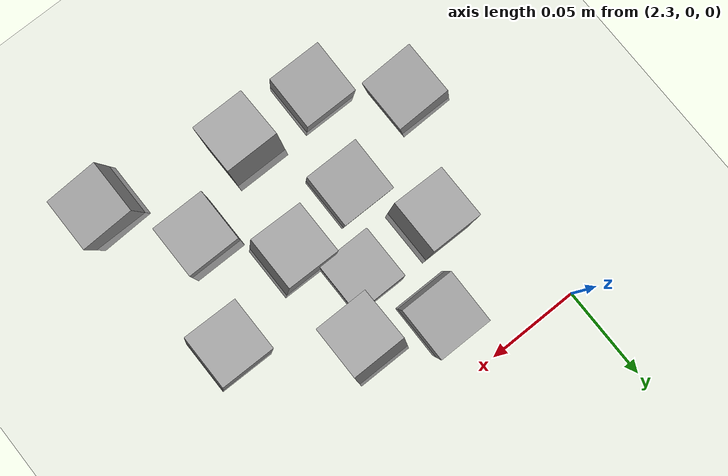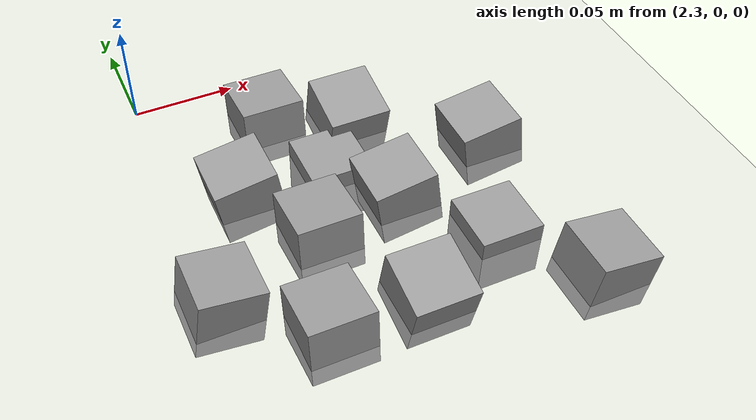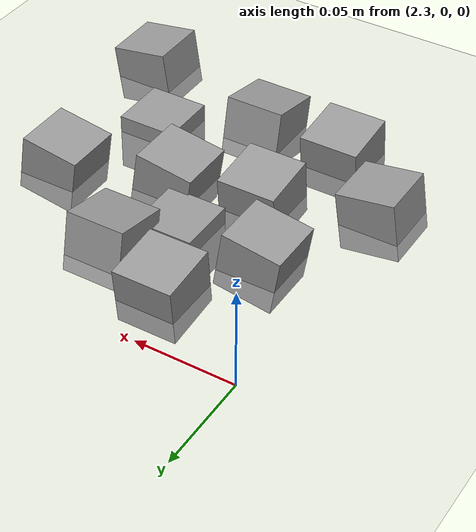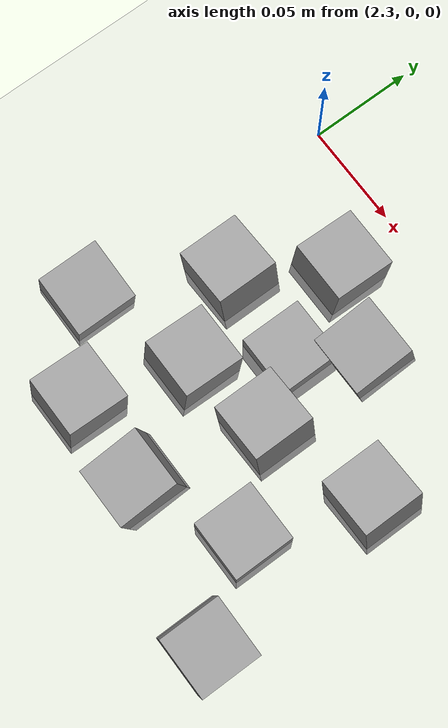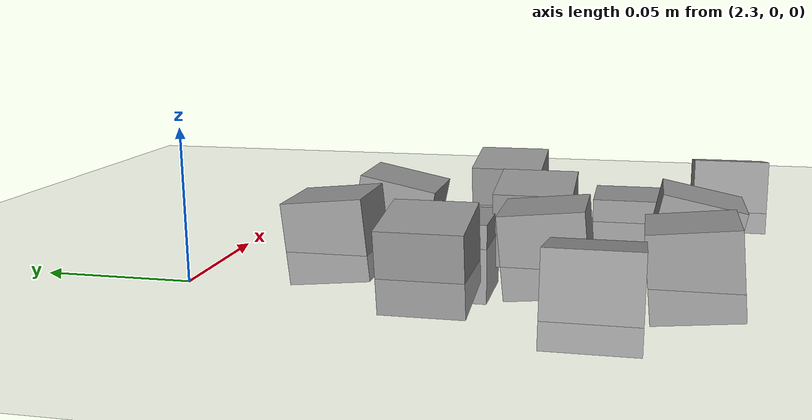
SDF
<sdf version="1.7">
 <world name="default">
  <model name="ground_plane">
   <static>1</static>
   <link name="link">
    <collision name="collision">
     <geometry><plane><normal>0 0 1</normal><size>100 100</size></plane></geometry>
     <surface><friction><ode><mu>100</mu><mu2>50</mu2></ode></friction></surface>
    </collision>
    <visual name="visual">
     <cast_shadows>0</cast_shadows>
     <geometry><plane><normal>0 0 1</normal><size>100 100</size></plane></geometry>
     <material>
      <script><uri>file://media/materials/scripts/gazebo.material</uri><name>Gazebo/Grey</name></script>
     </material>
    </visual>
   </link>
  </model>
  <model name="stone_road_4">
   <link name="link_0_clone_2_clone_1">
    <inertial>
     <mass>1</mass>
     <inertia>
      <ixx>0.166667</ixx>
      <ixy>0</ixy>
      <ixz>0</ixz>
      <iyy>0.166667</iyy>
      <iyz>0</iyz>
      <izz>0.166667</izz>
     </inertia>
    </inertial>
    <pose>0.041447 0.006316 0.003778 0 0.15 0</pose>
    <kinematic>1</kinematic>
    <visual name="visual">
     <geometry><box><size>0.03 0.03 0.03</size></box></geometry>
     <material>
      <lighting>1</lighting>
      <script><uri>file://media/materials/scripts/gazebo.material</uri><name>Gazebo/Grey</name></script>
      <shader type="pixel"><normal_map>__default__</normal_map></shader>
      <ambient>0.3 0.3 0.3 1</ambient>
      <diffuse>0.7 0.7 0.7 1</diffuse>
      <specular>0.01 0.01 0.01 1</specular>
      <emissive>0 0 0 1</emissive>
     </material>
    </visual>
    <collision name="collision">
     <geometry><box><size>0.03 0.03 0.03</size></box></geometry>
     <surface>
      <friction>
       <ode><mu>1</mu><mu2>1</mu2><fdir1>0 0 0</fdir1><slip1>0</slip1><slip2>0</slip2></ode>
       <torsional>
        <coefficient>1</coefficient>
        <patch_radius>0</patch_radius>
        <surface_radius>0</surface_radius>
        <use_patch_radius>1</use_patch_radius>
        <ode><slip>0</slip></ode>
       </torsional>
      </friction>
      <bounce><restitution_coefficient>0</restitution_coefficient><threshold>1e+06</threshold></bounce>
      <contact>
       <collide_without_contact>0</collide_without_contact>
       <collide_without_contact_bitmask>1</collide_without_contact_bitmask>
       <collide_bitmask>1</collide_bitmask>
       <ode>
        <soft_cfm>0</soft_cfm>
        <soft_erp>0.2</soft_erp>
        <kp>1e+13</kp>
        <kd>1</kd>
        <max_vel>0.01</max_vel>
        <min_depth>0</min_depth>
       </ode>
       <bullet>
        <split_impulse>1</split_impulse>
        <split_impulse_penetration_threshold>-0.01</split_impulse_penetration_threshold>
        <soft_cfm>0</soft_cfm>
        <soft_erp>0.2</soft_erp>
        <kp>1e+13</kp>
        <kd>1</kd>
       </bullet>
      </contact>
     </surface>
    </collision>
   </link>
   <link name="link_0_clone_2_clone_2_clone">
    <inertial>
     <mass>1</mass>
     <inertia>
      <ixx>0.166667</ixx>
      <ixy>0</ixy>
      <ixz>0</ixz>
      <iyy>0.166667</iyy>
      <iyz>0</iyz>
      <izz>0.166667</izz>
     </inertia>
    </inertial>
    <pose>0.189059 0.051135 0.003778 0 -0.15 0</pose>
    <kinematic>1</kinematic>
    <visual name="visual">
     <geometry><box><size>0.03 0.03 0.03</size></box></geometry>
     <material>
      <lighting>1</lighting>
      <script><uri>file://media/materials/scripts/gazebo.material</uri><name>Gazebo/Grey</name></script>
      <shader type="pixel"><normal_map>__default__</normal_map></shader>
      <ambient>0.3 0.3 0.3 1</ambient>
      <diffuse>0.7 0.7 0.7 1</diffuse>
      <specular>0.01 0.01 0.01 1</specular>
      <emissive>0 0 0 1</emissive>
     </material>
    </visual>
    <collision name="collision">
     <geometry><box><size>0.03 0.03 0.03</size></box></geometry>
     <surface>
      <friction>
       <ode><mu>1</mu><mu2>1</mu2><fdir1>0 0 0</fdir1><slip1>0</slip1><slip2>0</slip2></ode>
       <torsional>
        <coefficient>1</coefficient>
        <patch_radius>0</patch_radius>
        <surface_radius>0</surface_radius>
        <use_patch_radius>1</use_patch_radius>
        <ode><slip>0</slip></ode>
       </torsional>
      </friction>
      <bounce><restitution_coefficient>0</restitution_coefficient><threshold>1e+06</threshold></bounce>
      <contact>
       <collide_without_contact>0</collide_without_contact>
       <collide_without_contact_bitmask>1</collide_without_contact_bitmask>
       <collide_bitmask>1</collide_bitmask>
       <ode>
        <soft_cfm>0</soft_cfm>
        <soft_erp>0.2</soft_erp>
        <kp>1e+13</kp>
        <kd>1</kd>
        <max_vel>0.01</max_vel>
        <min_depth>0</min_depth>
       </ode>
       <bullet>
        <split_impulse>1</split_impulse>
        <split_impulse_penetration_threshold>-0.01</split_impulse_penetration_threshold>
        <soft_cfm>0</soft_cfm>
        <soft_erp>0.2</soft_erp>
        <kp>1e+13</kp>
        <kd>1</kd>
       </bullet>
      </contact>
     </surface>
    </collision>
   </link>
   <link name="link_0_clone_2_clone_2_clone_13_clone_clone_0">
    <inertial>
     <mass>1</mass>
     <inertia>
      <ixx>0.166667</ixx>
      <ixy>0</ixy>
      <ixz>0</ixz>
      <iyy>0.166667</iyy>
      <iyz>0</iyz>
      <izz>0.166667</izz>
     </inertia>
    </inertial>
    <pose>0.094072 0.02539 0.003778 -0.1 0 0</pose>
    <kinematic>1</kinematic>
    <visual name="visual">
     <geometry><box><size>0.03 0.03 0.03</size></box></geometry>
     <material>
      <lighting>1</lighting>
      <script><uri>file://media/materials/scripts/gazebo.material</uri><name>Gazebo/Grey</name></script>
      <shader type="pixel"><normal_map>__default__</normal_map></shader>
      <ambient>0.3 0.3 0.3 1</ambient>
      <diffuse>0.7 0.7 0.7 1</diffuse>
      <specular>0.01 0.01 0.01 1</specular>
      <emissive>0 0 0 1</emissive>
     </material>
    </visual>
    <collision name="collision">
     <geometry><box><size>0.03 0.03 0.03</size></box></geometry>
     <surface>
      <friction>
       <ode><mu>1</mu><mu2>1</mu2><fdir1>0 0 0</fdir1><slip1>0</slip1><slip2>0</slip2></ode>
       <torsional>
        <coefficient>1</coefficient>
        <patch_radius>0</patch_radius>
        <surface_radius>0</surface_radius>
        <use_patch_radius>1</use_patch_radius>
        <ode><slip>0</slip></ode>
       </torsional>
      </friction>
      <bounce><restitution_coefficient>0</restitution_coefficient><threshold>1e+06</threshold></bounce>
      <contact>
       <collide_without_contact>0</collide_without_contact>
       <collide_without_contact_bitmask>1</collide_without_contact_bitmask>
       <collide_bitmask>1</collide_bitmask>
       <ode>
        <soft_cfm>0</soft_cfm>
        <soft_erp>0.2</soft_erp>
        <kp>1e+13</kp>
        <kd>1</kd>
        <max_vel>0.01</max_vel>
        <min_depth>0</min_depth>
       </ode>
       <bullet>
        <split_impulse>1</split_impulse>
        <split_impulse_penetration_threshold>-0.01</split_impulse_penetration_threshold>
        <soft_cfm>0</soft_cfm>
        <soft_erp>0.2</soft_erp>
        <kp>1e+13</kp>
        <kd>1</kd>
       </bullet>
      </contact>
     </surface>
    </collision>
   </link>
   <link name="link_0_clone_2_clone_2_clone_13_clone_clone_1">
    <inertial>
     <mass>1</mass>
     <inertia>
      <ixx>0.166667</ixx>
      <ixy>0</ixy>
      <ixz>0</ixz>
      <iyy>0.166667</iyy>
      <iyz>0</iyz>
      <izz>0.166667</izz>
     </inertia>
    </inertial>
    <pose>0.098415 0.103772 0.003778 -0.1 0 0</pose>
    <kinematic>1</kinematic>
    <visual name="visual">
     <geometry><box><size>0.03 0.03 0.03</size></box></geometry>
     <material>
      <lighting>1</lighting>
      <script><uri>file://media/materials/scripts/gazebo.material</uri><name>Gazebo/Grey</name></script>
      <shader type="pixel"><normal_map>__default__</normal_map></shader>
      <ambient>0.3 0.3 0.3 1</ambient>
      <diffuse>0.7 0.7 0.7 1</diffuse>
      <specular>0.01 0.01 0.01 1</specular>
      <emissive>0 0 0 1</emissive>
     </material>
    </visual>
    <collision name="collision">
     <geometry><box><size>0.03 0.03 0.03</size></box></geometry>
     <surface>
      <friction>
       <ode><mu>1</mu><mu2>1</mu2><fdir1>0 0 0</fdir1><slip1>0</slip1><slip2>0</slip2></ode>
       <torsional>
        <coefficient>1</coefficient>
        <patch_radius>0</patch_radius>
        <surface_radius>0</surface_radius>
        <use_patch_radius>1</use_patch_radius>
        <ode><slip>0</slip></ode>
       </torsional>
      </friction>
      <bounce><restitution_coefficient>0</restitution_coefficient><threshold>1e+06</threshold></bounce>
      <contact>
       <collide_without_contact>0</collide_without_contact>
       <collide_without_contact_bitmask>1</collide_without_contact_bitmask>
       <collide_bitmask>1</collide_bitmask>
       <ode>
        <soft_cfm>0</soft_cfm>
        <soft_erp>0.2</soft_erp>
        <kp>1e+13</kp>
        <kd>1</kd>
        <max_vel>0.01</max_vel>
        <min_depth>0</min_depth>
       </ode>
       <bullet>
        <split_impulse>1</split_impulse>
        <split_impulse_penetration_threshold>-0.01</split_impulse_penetration_threshold>
        <soft_cfm>0</soft_cfm>
        <soft_erp>0.2</soft_erp>
        <kp>1e+13</kp>
        <kd>1</kd>
       </bullet>
      </contact>
     </surface>
    </collision>
   </link>
   <link name="link_0_clone_2_clone_2_clone_13_clone_clone_16_clone_13">
    <inertial>
     <mass>1</mass>
     <inertia>
      <ixx>0.166667</ixx>
      <ixy>0</ixy>
      <ixz>0</ixz>
      <iyy>0.166667</iyy>
      <iyz>0</iyz>
      <izz>0.166667</izz>
     </inertia>
    </inertial>
    <pose>0.168013 -0.00203 -0.006222 0 -0 0</pose>
    <kinematic>1</kinematic>
    <visual name="visual">
     <geometry><box><size>0.03 0.03 0.03</size></box></geometry>
     <material>
      <lighting>1</lighting>
      <script><uri>file://media/materials/scripts/gazebo.material</uri><name>Gazebo/Grey</name></script>
      <shader type="pixel"><normal_map>__default__</normal_map></shader>
      <ambient>0.3 0.3 0.3 1</ambient>
      <diffuse>0.7 0.7 0.7 1</diffuse>
      <specular>0.01 0.01 0.01 1</specular>
      <emissive>0 0 0 1</emissive>
     </material>
    </visual>
    <collision name="collision">
     <geometry><box><size>0.03 0.03 0.03</size></box></geometry>
     <surface>
      <friction>
       <ode><mu>1</mu><mu2>1</mu2><fdir1>0 0 0</fdir1><slip1>0</slip1><slip2>0</slip2></ode>
       <torsional>
        <coefficient>1</coefficient>
        <patch_radius>0</patch_radius>
        <surface_radius>0</surface_radius>
        <use_patch_radius>1</use_patch_radius>
        <ode><slip>0</slip></ode>
       </torsional>
      </friction>
      <bounce><restitution_coefficient>0</restitution_coefficient><threshold>1e+06</threshold></bounce>
      <contact>
       <collide_without_contact>0</collide_without_contact>
       <collide_without_contact_bitmask>1</collide_without_contact_bitmask>
       <collide_bitmask>1</collide_bitmask>
       <ode>
        <soft_cfm>0</soft_cfm>
        <soft_erp>0.2</soft_erp>
        <kp>1e+13</kp>
        <kd>1</kd>
        <max_vel>0.01</max_vel>
        <min_depth>0</min_depth>
       </ode>
       <bullet>
        <split_impulse>1</split_impulse>
        <split_impulse_penetration_threshold>-0.01</split_impulse_penetration_threshold>
        <soft_cfm>0</soft_cfm>
        <soft_erp>0.2</soft_erp>
        <kp>1e+13</kp>
        <kd>1</kd>
       </bullet>
      </contact>
     </surface>
    </collision>
   </link>
   <link name="link_0_clone_2_clone_2_clone_13_clone_clone_16_clone_20">
    <inertial>
     <mass>1</mass>
     <inertia>
      <ixx>0.166667</ixx>
      <ixy>0</ixy>
      <ixz>0</ixz>
      <iyy>0.166667</iyy>
      <iyz>0</iyz>
      <izz>0.166667</izz>
     </inertia>
    </inertial>
    <pose>0.115763 0.063063 -0.006222 0 -0 0</pose>
    <kinematic>1</kinematic>
    <visual name="visual">
     <geometry><box><size>0.03 0.03 0.03</size></box></geometry>
     <material>
      <lighting>1</lighting>
      <script><uri>file://media/materials/scripts/gazebo.material</uri><name>Gazebo/Grey</name></script>
      <shader type="pixel"><normal_map>__default__</normal_map></shader>
      <ambient>0.3 0.3 0.3 1</ambient>
      <diffuse>0.7 0.7 0.7 1</diffuse>
      <specular>0.01 0.01 0.01 1</specular>
      <emissive>0 0 0 1</emissive>
     </material>
    </visual>
    <collision name="collision">
     <geometry><box><size>0.03 0.03 0.03</size></box></geometry>
     <surface>
      <friction>
       <ode><mu>1</mu><mu2>1</mu2><fdir1>0 0 0</fdir1><slip1>0</slip1><slip2>0</slip2></ode>
       <torsional>
        <coefficient>1</coefficient>
        <patch_radius>0</patch_radius>
        <surface_radius>0</surface_radius>
        <use_patch_radius>1</use_patch_radius>
        <ode><slip>0</slip></ode>
       </torsional>
      </friction>
      <bounce><restitution_coefficient>0</restitution_coefficient><threshold>1e+06</threshold></bounce>
      <contact>
       <collide_without_contact>0</collide_without_contact>
       <collide_without_contact_bitmask>1</collide_without_contact_bitmask>
       <collide_bitmask>1</collide_bitmask>
       <ode>
        <soft_cfm>0</soft_cfm>
        <soft_erp>0.2</soft_erp>
        <kp>1e+13</kp>
        <kd>1</kd>
        <max_vel>0.01</max_vel>
        <min_depth>0</min_depth>
       </ode>
       <bullet>
        <split_impulse>1</split_impulse>
        <split_impulse_penetration_threshold>-0.01</split_impulse_penetration_threshold>
        <soft_cfm>0</soft_cfm>
        <soft_erp>0.2</soft_erp>
        <kp>1e+13</kp>
        <kd>1</kd>
       </bullet>
      </contact>
     </surface>
    </collision>
   </link>
   <link name="link_0_clone_2_clone_2_clone_13_clone_clone_4">
    <inertial>
     <mass>1</mass>
     <inertia>
      <ixx>0.166667</ixx>
      <ixy>0</ixy>
      <ixz>0</ixz>
      <iyy>0.166667</iyy>
      <iyz>0</iyz>
      <izz>0.166667</izz>
     </inertia>
    </inertial>
    <pose>0.078198 -0.024053 0.003778 -0.1 0 0</pose>
    <kinematic>1</kinematic>
    <visual name="visual">
     <geometry><box><size>0.03 0.03 0.03</size></box></geometry>
     <material>
      <lighting>1</lighting>
      <script><uri>file://media/materials/scripts/gazebo.material</uri><name>Gazebo/Grey</name></script>
      <shader type="pixel"><normal_map>__default__</normal_map></shader>
      <ambient>0.3 0.3 0.3 1</ambient>
      <diffuse>0.7 0.7 0.7 1</diffuse>
      <specular>0.01 0.01 0.01 1</specular>
      <emissive>0 0 0 1</emissive>
     </material>
    </visual>
    <collision name="collision">
     <geometry><box><size>0.03 0.03 0.03</size></box></geometry>
     <surface>
      <friction>
       <ode><mu>1</mu><mu2>1</mu2><fdir1>0 0 0</fdir1><slip1>0</slip1><slip2>0</slip2></ode>
       <torsional>
        <coefficient>1</coefficient>
        <patch_radius>0</patch_radius>
        <surface_radius>0</surface_radius>
        <use_patch_radius>1</use_patch_radius>
        <ode><slip>0</slip></ode>
       </torsional>
      </friction>
      <bounce><restitution_coefficient>0</restitution_coefficient><threshold>1e+06</threshold></bounce>
      <contact>
       <collide_without_contact>0</collide_without_contact>
       <collide_without_contact_bitmask>1</collide_without_contact_bitmask>
       <collide_bitmask>1</collide_bitmask>
       <ode>
        <soft_cfm>0</soft_cfm>
        <soft_erp>0.2</soft_erp>
        <kp>1e+13</kp>
        <kd>1</kd>
        <max_vel>0.01</max_vel>
        <min_depth>0</min_depth>
       </ode>
       <bullet>
        <split_impulse>1</split_impulse>
        <split_impulse_penetration_threshold>-0.01</split_impulse_penetration_threshold>
        <soft_cfm>0</soft_cfm>
        <soft_erp>0.2</soft_erp>
        <kp>1e+13</kp>
        <kd>1</kd>
       </bullet>
      </contact>
     </surface>
    </collision>
   </link>
   <link name="link_0_clone_2_clone_2_clone_6">
    <inertial>
     <mass>1</mass>
     <inertia>
      <ixx>0.166667</ixx>
      <ixy>0</ixy>
      <ixz>0</ixz>
      <iyy>0.166667</iyy>
      <iyz>0</iyz>
      <izz>0.166667</izz>
     </inertia>
    </inertial>
    <pose>0.136141 0.034017 0.003778 0 -0.15 0</pose>
    <kinematic>1</kinematic>
    <visual name="visual">
     <geometry><box><size>0.03 0.03 0.03</size></box></geometry>
     <material>
      <lighting>1</lighting>
      <script><uri>file://media/materials/scripts/gazebo.material</uri><name>Gazebo/Grey</name></script>
      <shader type="pixel"><normal_map>__default__</normal_map></shader>
      <ambient>0.3 0.3 0.3 1</ambient>
      <diffuse>0.7 0.7 0.7 1</diffuse>
      <specular>0.01 0.01 0.01 1</specular>
      <emissive>0 0 0 1</emissive>
     </material>
    </visual>
    <collision name="collision">
     <geometry><box><size>0.03 0.03 0.03</size></box></geometry>
     <surface>
      <friction>
       <ode><mu>1</mu><mu2>1</mu2><fdir1>0 0 0</fdir1><slip1>0</slip1><slip2>0</slip2></ode>
       <torsional>
        <coefficient>1</coefficient>
        <patch_radius>0</patch_radius>
        <surface_radius>0</surface_radius>
        <use_patch_radius>1</use_patch_radius>
        <ode><slip>0</slip></ode>
       </torsional>
      </friction>
      <bounce><restitution_coefficient>0</restitution_coefficient><threshold>1e+06</threshold></bounce>
      <contact>
       <collide_without_contact>0</collide_without_contact>
       <collide_without_contact_bitmask>1</collide_without_contact_bitmask>
       <collide_bitmask>1</collide_bitmask>
       <ode>
        <soft_cfm>0</soft_cfm>
        <soft_erp>0.2</soft_erp>
        <kp>1e+13</kp>
        <kd>1</kd>
        <max_vel>0.01</max_vel>
        <min_depth>0</min_depth>
       </ode>
       <bullet>
        <split_impulse>1</split_impulse>
        <split_impulse_penetration_threshold>-0.01</split_impulse_penetration_threshold>
        <soft_cfm>0</soft_cfm>
        <soft_erp>0.2</soft_erp>
        <kp>1e+13</kp>
        <kd>1</kd>
       </bullet>
      </contact>
     </surface>
    </collision>
   </link>
   <link name="link_0_clone_2_clone_2_clone_9">
    <inertial>
     <mass>1</mass>
     <inertia>
      <ixx>0.166667</ixx>
      <ixy>0</ixy>
      <ixz>0</ixz>
      <iyy>0.166667</iyy>
      <iyz>0</iyz>
      <izz>0.166667</izz>
     </inertia>
    </inertial>
    <pose>0.071478 0.063212 0.003778 0 -0.15 0</pose>
    <kinematic>1</kinematic>
    <visual name="visual">
     <geometry><box><size>0.03 0.03 0.03</size></box></geometry>
     <material>
      <lighting>1</lighting>
      <script><uri>file://media/materials/scripts/gazebo.material</uri><name>Gazebo/Grey</name></script>
      <shader type="pixel"><normal_map>__default__</normal_map></shader>
      <ambient>0.3 0.3 0.3 1</ambient>
      <diffuse>0.7 0.7 0.7 1</diffuse>
      <specular>0.01 0.01 0.01 1</specular>
      <emissive>0 0 0 1</emissive>
     </material>
    </visual>
    <collision name="collision">
     <geometry><box><size>0.03 0.03 0.03</size></box></geometry>
     <surface>
      <friction>
       <ode><mu>1</mu><mu2>1</mu2><fdir1>0 0 0</fdir1><slip1>0</slip1><slip2>0</slip2></ode>
       <torsional>
        <coefficient>1</coefficient>
        <patch_radius>0</patch_radius>
        <surface_radius>0</surface_radius>
        <use_patch_radius>1</use_patch_radius>
        <ode><slip>0</slip></ode>
       </torsional>
      </friction>
      <bounce><restitution_coefficient>0</restitution_coefficient><threshold>1e+06</threshold></bounce>
      <contact>
       <collide_without_contact>0</collide_without_contact>
       <collide_without_contact_bitmask>1</collide_without_contact_bitmask>
       <collide_bitmask>1</collide_bitmask>
       <ode>
        <soft_cfm>0</soft_cfm>
        <soft_erp>0.2</soft_erp>
        <kp>1e+13</kp>
        <kd>1</kd>
        <max_vel>0.01</max_vel>
        <min_depth>0</min_depth>
       </ode>
       <bullet>
        <split_impulse>1</split_impulse>
        <split_impulse_penetration_threshold>-0.01</split_impulse_penetration_threshold>
        <soft_cfm>0</soft_cfm>
        <soft_erp>0.2</soft_erp>
        <kp>1e+13</kp>
        <kd>1</kd>
       </bullet>
      </contact>
     </surface>
    </collision>
   </link>
   <link name="link_0_clone_2_clone_8">
    <inertial>
     <mass>1</mass>
     <inertia>
      <ixx>0.166667</ixx>
      <ixy>0</ixy>
      <ixz>0</ixz>
      <iyy>0.166667</iyy>
      <iyz>0</iyz>
      <izz>0.166667</izz>
     </inertia>
    </inertial>
    <pose>0.197388 -0.042712 0.003778 0 0.15 0</pose>
    <kinematic>1</kinematic>
    <visual name="visual">
     <geometry><box><size>0.03 0.03 0.03</size></box></geometry>
     <material>
      <lighting>1</lighting>
      <script><uri>file://media/materials/scripts/gazebo.material</uri><name>Gazebo/Grey</name></script>
      <shader type="pixel"><normal_map>__default__</normal_map></shader>
      <ambient>0.3 0.3 0.3 1</ambient>
      <diffuse>0.7 0.7 0.7 1</diffuse>
      <specular>0.01 0.01 0.01 1</specular>
      <emissive>0 0 0 1</emissive>
     </material>
    </visual>
    <collision name="collision">
     <geometry><box><size>0.03 0.03 0.03</size></box></geometry>
     <surface>
      <friction>
       <ode><mu>1</mu><mu2>1</mu2><fdir1>0 0 0</fdir1><slip1>0</slip1><slip2>0</slip2></ode>
       <torsional>
        <coefficient>1</coefficient>
        <patch_radius>0</patch_radius>
        <surface_radius>0</surface_radius>
        <use_patch_radius>1</use_patch_radius>
        <ode><slip>0</slip></ode>
       </torsional>
      </friction>
      <bounce><restitution_coefficient>0</restitution_coefficient><threshold>1e+06</threshold></bounce>
      <contact>
       <collide_without_contact>0</collide_without_contact>
       <collide_without_contact_bitmask>1</collide_without_contact_bitmask>
       <collide_bitmask>1</collide_bitmask>
       <ode>
        <soft_cfm>0</soft_cfm>
        <soft_erp>0.2</soft_erp>
        <kp>1e+13</kp>
        <kd>1</kd>
        <max_vel>0.01</max_vel>
        <min_depth>0</min_depth>
       </ode>
       <bullet>
        <split_impulse>1</split_impulse>
        <split_impulse_penetration_threshold>-0.01</split_impulse_penetration_threshold>
        <soft_cfm>0</soft_cfm>
        <soft_erp>0.2</soft_erp>
        <kp>1e+13</kp>
        <kd>1</kd>
       </bullet>
      </contact>
     </surface>
    </collision>
   </link>
   <link name="link_0_clone_8">
    <inertial>
     <mass>1</mass>
     <inertia>
      <ixx>0.166667</ixx>
      <ixy>0</ixy>
      <ixz>0</ixz>
      <iyy>0.166667</iyy>
      <iyz>0</iyz>
      <izz>0.166667</izz>
     </inertia>
    </inertial>
    <pose>0.135749 0.089175 0.003778 0.2 -0 0</pose>
    <kinematic>1</kinematic>
    <visual name="visual">
     <geometry><box><size>0.03 0.03 0.03</size></box></geometry>
     <material>
      <lighting>1</lighting>
      <script><uri>file://media/materials/scripts/gazebo.material</uri><name>Gazebo/Grey</name></script>
      <shader type="pixel"><normal_map>__default__</normal_map></shader>
      <ambient>0.3 0.3 0.3 1</ambient>
      <diffuse>0.7 0.7 0.7 1</diffuse>
      <specular>0.01 0.01 0.01 1</specular>
      <emissive>0 0 0 1</emissive>
     </material>
    </visual>
    <collision name="collision">
     <geometry><box><size>0.03 0.03 0.03</size></box></geometry>
     <surface>
      <friction>
       <ode><mu>1</mu><mu2>1</mu2><fdir1>0 0 0</fdir1><slip1>0</slip1><slip2>0</slip2></ode>
       <torsional>
        <coefficient>1</coefficient>
        <patch_radius>0</patch_radius>
        <surface_radius>0</surface_radius>
        <use_patch_radius>1</use_patch_radius>
        <ode><slip>0</slip></ode>
       </torsional>
      </friction>
      <bounce><restitution_coefficient>0</restitution_coefficient><threshold>1e+06</threshold></bounce>
      <contact>
       <collide_without_contact>0</collide_without_contact>
       <collide_without_contact_bitmask>1</collide_without_contact_bitmask>
       <collide_bitmask>1</collide_bitmask>
       <ode>
        <soft_cfm>0</soft_cfm>
        <soft_erp>0.2</soft_erp>
        <kp>1e+13</kp>
        <kd>1</kd>
        <max_vel>0.01</max_vel>
        <min_depth>0</min_depth>
       </ode>
       <bullet>
        <split_impulse>1</split_impulse>
        <split_impulse_penetration_threshold>-0.01</split_impulse_penetration_threshold>
        <soft_cfm>0</soft_cfm>
        <soft_erp>0.2</soft_erp>
        <kp>1e+13</kp>
        <kd>1</kd>
       </bullet>
      </contact>
     </surface>
    </collision>
   </link>
   <link name="link_0_clone_9">
    <inertial>
     <mass>1</mass>
     <inertia>
      <ixx>0.166667</ixx>
      <ixy>0</ixy>
      <ixz>0</ixz>
      <iyy>0.166667</iyy>
      <iyz>0</iyz>
      <izz>0.166667</izz>
     </inertia>
    </inertial>
    <pose>0.122173 -0.025452 0.003778 0.2 -0 0</pose>
    <kinematic>1</kinematic>
    <visual name="visual">
     <geometry><box><size>0.03 0.03 0.03</size></box></geometry>
     <material>
      <lighting>1</lighting>
      <script><uri>file://media/materials/scripts/gazebo.material</uri><name>Gazebo/Grey</name></script>
      <shader type="pixel"><normal_map>__default__</normal_map></shader>
      <ambient>0.3 0.3 0.3 1</ambient>
      <diffuse>0.7 0.7 0.7 1</diffuse>
      <specular>0.01 0.01 0.01 1</specular>
      <emissive>0 0 0 1</emissive>
     </material>
    </visual>
    <collision name="collision">
     <geometry><box><size>0.03 0.03 0.03</size></box></geometry>
     <surface>
      <friction>
       <ode><mu>1</mu><mu2>1</mu2><fdir1>0 0 0</fdir1><slip1>0</slip1><slip2>0</slip2></ode>
       <torsional>
        <coefficient>1</coefficient>
        <patch_radius>0</patch_radius>
        <surface_radius>0</surface_radius>
        <use_patch_radius>1</use_patch_radius>
        <ode><slip>0</slip></ode>
       </torsional>
      </friction>
      <bounce><restitution_coefficient>0</restitution_coefficient><threshold>1e+06</threshold></bounce>
      <contact>
       <collide_without_contact>0</collide_without_contact>
       <collide_without_contact_bitmask>1</collide_without_contact_bitmask>
       <collide_bitmask>1</collide_bitmask>
       <ode>
        <soft_cfm>0</soft_cfm>
        <soft_erp>0.2</soft_erp>
        <kp>1e+13</kp>
        <kd>1</kd>
        <max_vel>0.01</max_vel>
        <min_depth>0</min_depth>
       </ode>
       <bullet>
        <split_impulse>1</split_impulse>
        <split_impulse_penetration_threshold>-0.01</split_impulse_penetration_threshold>
        <soft_cfm>0</soft_cfm>
        <soft_erp>0.2</soft_erp>
        <kp>1e+13</kp>
        <kd>1</kd>
       </bullet>
      </contact>
     </surface>
    </collision>
   </link>
   <static>0</static>
   <pose>2.25857 -0.135925 -0 0 -0 0</pose>
  </model>
 </world>
</sdf>
